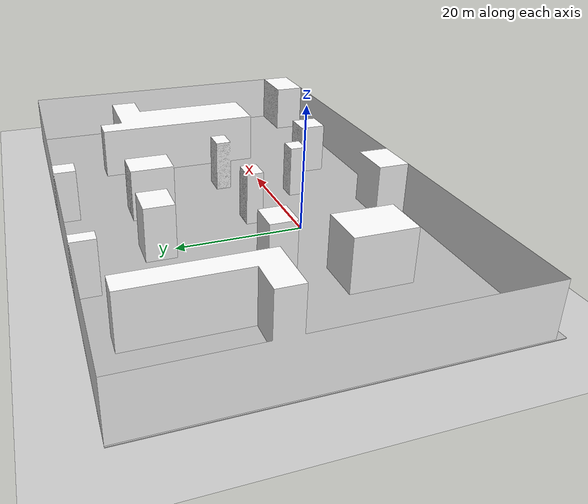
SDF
<sdf version="1.7">
 <world name="default">
  <model name="ground_plane">
   <static>1</static>
   <link name="link">
    <collision name="collision">
     <geometry><plane><normal>0 0 1</normal><size>100 100</size></plane></geometry>
     <surface>
      <contact><collide_bitmask>65535</collide_bitmask></contact>
      <friction><ode><mu>100</mu><mu2>50</mu2></ode></friction>
     </surface>
    </collision>
    <visual name="visual">
     <cast_shadows>0</cast_shadows>
     <geometry><plane><normal>0 0 1</normal><size>100 100</size></plane></geometry>
     <material>
      <script><uri>file://media/materials/scripts/gazebo.material</uri><name>Gazebo/Grey</name></script>
     </material>
    </visual>
   </link>
  </model>
  <light name="sun" type="directional">
   <pose>0 0 10 0 -0 0</pose>
   <diffuse>0.8 0.8 0.8 1</diffuse>
   <specular>0.2 0.2 0.2 1</specular>
   <attenuation>
    <range>1000</range>
    <constant>0.9</constant>
    <linear>0.01</linear>
    <quadratic>0.001</quadratic>
   </attenuation>
   <direction>-0.5 0.1 -0.9</direction>
   <spot><inner_angle>0</inner_angle><outer_angle>0</outer_angle><falloff>0</falloff></spot>
  </light>
  <model name="all_build">
   <pose>0 0 -0.960532 0 -0 0</pose>
   <static>1</static>
   <link name="body">
    <collision name="environment_model_collision">
     <geometry><mesh><uri>model://one_hard_build.dae</uri></mesh></geometry>
    </collision>
    <visual name="visual"><geometry><mesh><uri>model://one_hard_build.dae</uri></mesh></geometry></visual>
   </link>
  </model>
  <gravity>0 0 -9.8</gravity>
  <magnetic_field>6e-06 2.3e-05 -4.2e-05</magnetic_field>
  <atmosphere type="adiabatic"/>
  <physics type="ode">
   <max_step_size>0.001</max_step_size>
   <real_time_factor>1</real_time_factor>
   <real_time_update_rate>1000</real_time_update_rate>
  </physics>
  <scene><ambient>0.4 0.4 0.4 1</ambient><background>0.7 0.7 0.7 1</background><shadows>1</shadows></scene>
  <spherical_coordinates>
   <surface_model>EARTH_WGS84</surface_model>
   <latitude_deg>0</latitude_deg>
   <longitude_deg>0</longitude_deg>
   <elevation>0</elevation>
   <heading_deg>0</heading_deg>
  </spherical_coordinates>
  <model name="asphalt_ground_plane">
   <static>1</static>
   <link name="link">
    <collision name="collision">
     <geometry><box><size>55 86.8234 0.1</size></box></geometry>
     <surface><friction><ode><mu>100</mu><mu2>50</mu2></ode></friction></surface>
    </collision>
    <visual name="visual">
     <cast_shadows>0</cast_shadows>
     <geometry><box><size>55 86.8234 0.1</size></box></geometry>
     <material>
      <script>
       <uri>model://asphalt_ground_plane/materials/scripts</uri>
       <uri>model://asphalt_ground_plane/materials/textures/</uri>
       <name>AsphaltGroundPlane/Image</name>
      </script>
     </material>
    </visual>
   </link>
   <pose>8.26398 8.0628 0 0 -0 1.5708</pose>
  </model>
 </world>
</sdf>
